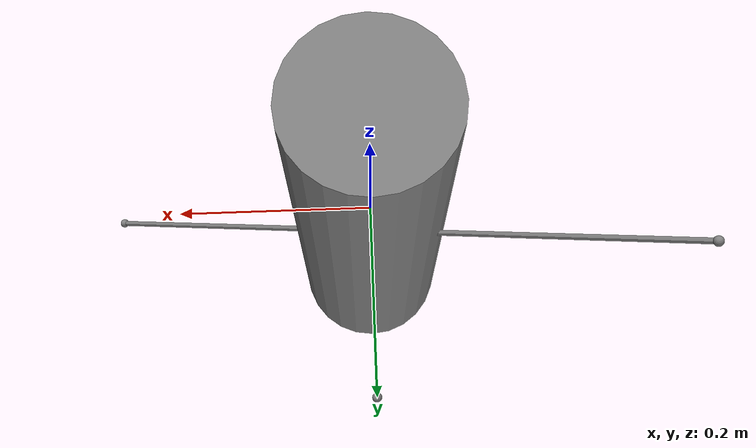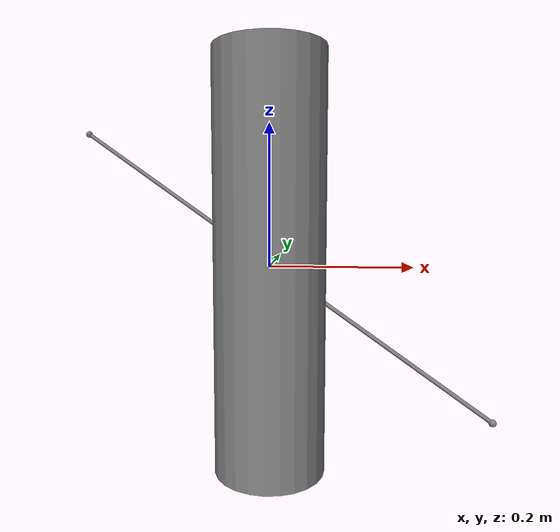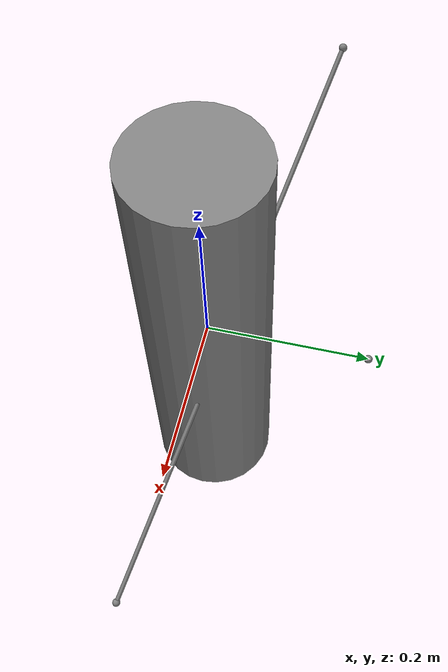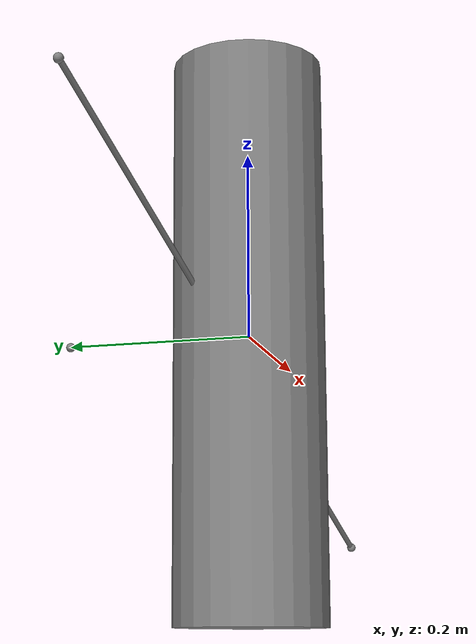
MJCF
<mujoco>
  <worldbody>
    <body name="b1" pos="-0.3 0.1 0.2">
      <joint name="j1" type="slide" axis="1 0 0"/>
      <site name="s1" pos="0 0 0"/>
    </body>
    <body name="cylinder_body" pos="0 0 0">
      <geom name="wrap_cyl" type="cylinder" size="0.08 0.3"/>
      <site name="cyl_side" pos="0 0.2 0"/>
    </body>
    <body name="b2" pos="0.3 -0.05 -0.2">
      <joint name="j2" type="slide" axis="1 0 0"/>
      <site name="s2" pos="0 0 0"/>
    </body>
  </worldbody>
  <tendon>
    <spatial name="t_cyl_side">
      <site site="s1"/>
      <geom geom="wrap_cyl" sidesite="cyl_side"/>
      <site site="s2"/>
    </spatial>
  </tendon>
</mujoco>
